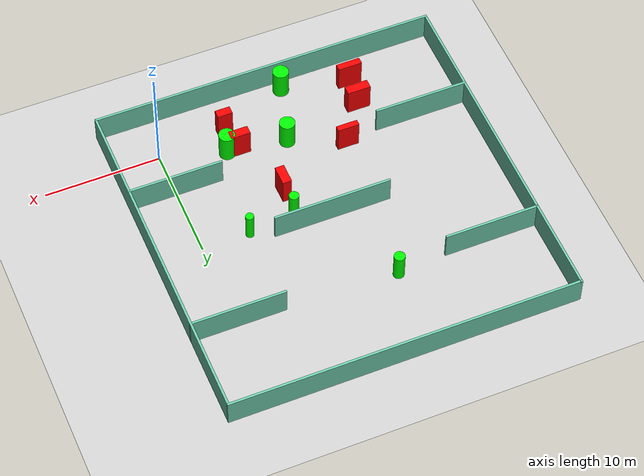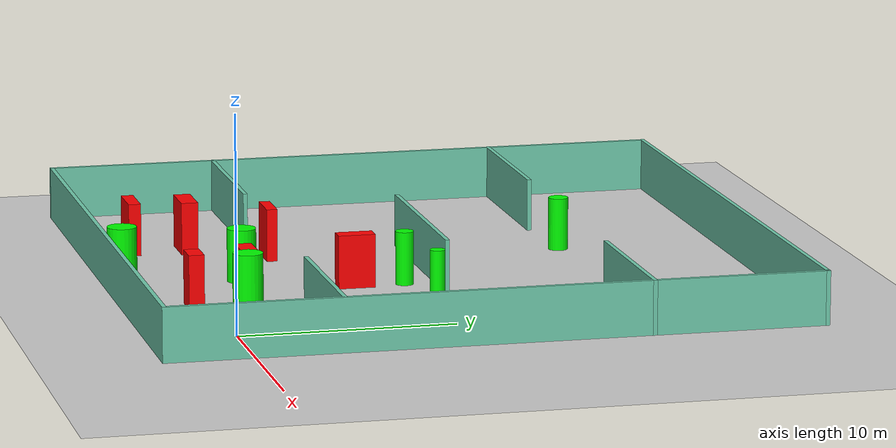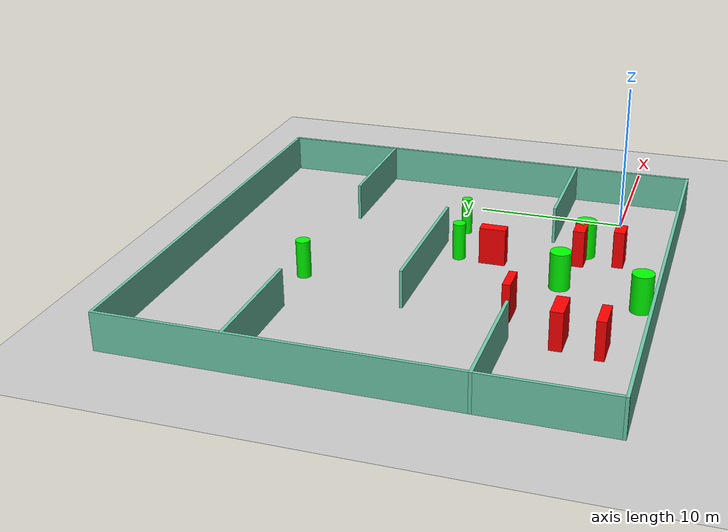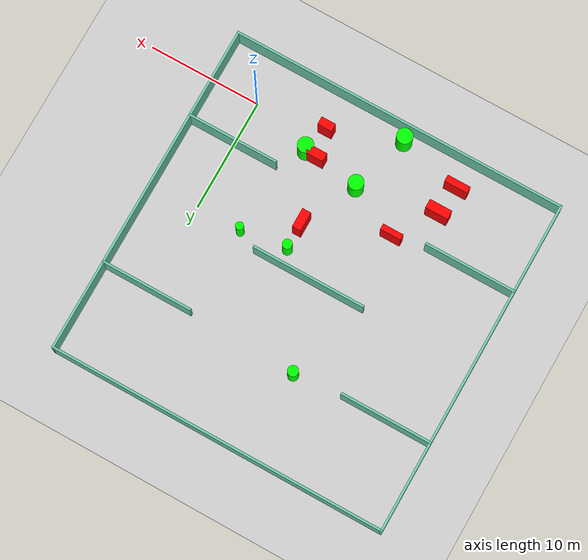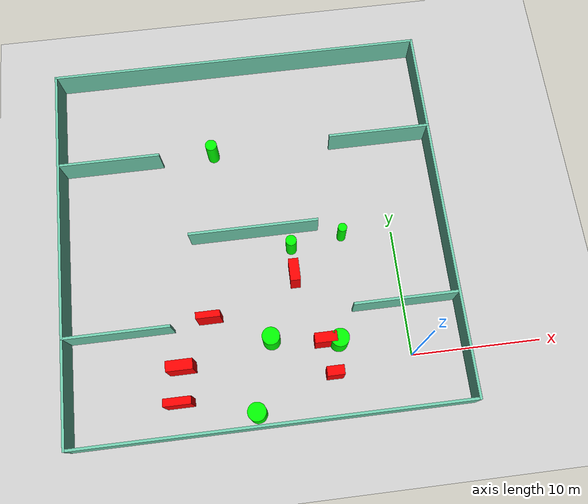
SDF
<sdf version="1.7">
 <world name="default">
  <light name="sun" type="directional">
   <pose>0 0 10 0 -0 0</pose>
   <diffuse>0.8 0.8 0.8 1</diffuse>
   <specular>0.2 0.2 0.2 1</specular>
   <attenuation>
    <range>1000</range>
    <constant>0.9</constant>
    <linear>0.01</linear>
    <quadratic>0.001</quadratic>
   </attenuation>
   <direction>-0.5 0.1 -0.9</direction>
   <spot><inner_angle>0</inner_angle><outer_angle>0</outer_angle><falloff>0</falloff></spot>
  </light>
  <model name="ground_plane">
   <static>1</static>
   <link name="link">
    <collision name="collision">
     <geometry><plane><normal>0 0 1</normal><size>100 100</size></plane></geometry>
     <surface>
      <contact><collide_bitmask>65535</collide_bitmask></contact>
      <friction><ode><mu>100</mu><mu2>50</mu2></ode></friction>
     </surface>
    </collision>
    <visual name="visual">
     <cast_shadows>0</cast_shadows>
     <geometry><plane><normal>0 0 1</normal><size>100 100</size></plane></geometry>
     <material>
      <script><uri>file://media/materials/scripts/gazebo.material</uri><name>Gazebo/Grey</name></script>
     </material>
    </visual>
   </link>
  </model>
  <gravity>0 0 -9.8</gravity>
  <magnetic_field>6e-06 2.3e-05 -4.2e-05</magnetic_field>
  <atmosphere type="adiabatic"/>
  <physics type="ode">
   <max_step_size>0.001</max_step_size>
   <real_time_factor>1</real_time_factor>
   <real_time_update_rate>1000</real_time_update_rate>
  </physics>
  <scene><ambient>0.4 0.4 0.4 1</ambient><background>0.7 0.7 0.7 1</background><shadows>1</shadows></scene>
  <spherical_coordinates>
   <surface_model>EARTH_WGS84</surface_model>
   <latitude_deg>0</latitude_deg>
   <longitude_deg>0</longitude_deg>
   <elevation>0</elevation>
   <heading_deg>0</heading_deg>
  </spherical_coordinates>
  <model name="my_base_walls">
   <link name="Wall_10">
    <collision name="Wall_10_Collision">
     <geometry><box><size>8.2 0.2 2.5</size></box></geometry>
     <pose>0 0 1.25 0 -0 0</pose>
    </collision>
    <visual name="Wall_10_Visual">
     <pose>0 0 1.25 0 -0 0</pose>
     <geometry><box><size>8.2 0.2 2.5</size></box></geometry>
     <material>
      <script><uri>file://media/materials/scripts/gazebo.material</uri><name>Gazebo/Grey</name></script>
      <ambient>0.435294 0.796078 0.67451 1</ambient>
     </material>
     <meta><layer>0</layer></meta>
    </visual>
    <pose>-11 -7 0 0 -0 0</pose>
   </link>
   <link name="Wall_12">
    <collision name="Wall_12_Collision">
     <geometry><box><size>8.2 0.2 2.5</size></box></geometry>
     <pose>0 0 1.25 0 -0 0</pose>
    </collision>
    <visual name="Wall_12_Visual">
     <pose>0 0 1.25 0 -0 0</pose>
     <geometry><box><size>8.2 0.2 2.5</size></box></geometry>
     <material>
      <script><uri>file://media/materials/scripts/gazebo.material</uri><name>Gazebo/Grey</name></script>
      <ambient>0.435294 0.796078 0.67451 1</ambient>
     </material>
     <meta><layer>0</layer></meta>
    </visual>
    <pose>-11 7 0 0 -0 0</pose>
   </link>
   <link name="Wall_14">
    <collision name="Wall_14_Collision">
     <geometry><box><size>8.2 0.2 2.5</size></box></geometry>
     <pose>0 0 1.25 0 -0 0</pose>
    </collision>
    <visual name="Wall_14_Visual">
     <pose>0 0 1.25 0 -0 0</pose>
     <geometry><box><size>8.2 0.2 2.5</size></box></geometry>
     <material>
      <script><uri>file://media/materials/scripts/gazebo.material</uri><name>Gazebo/Grey</name></script>
      <ambient>0.435294 0.796078 0.67451 1</ambient>
     </material>
     <meta><layer>0</layer></meta>
    </visual>
    <pose>11 7 0 0 -0 3.14159</pose>
   </link>
   <link name="Wall_16">
    <collision name="Wall_16_Collision">
     <geometry><box><size>10.2 0.2 2.5</size></box></geometry>
     <pose>0 0 1.25 0 -0 0</pose>
    </collision>
    <visual name="Wall_16_Visual">
     <pose>0 0 1.25 0 -0 0</pose>
     <geometry><box><size>10.2 0.2 2.5</size></box></geometry>
     <material>
      <script><uri>file://media/materials/scripts/gazebo.material</uri><name>Gazebo/Grey</name></script>
      <ambient>0.435294 0.796078 0.67451 1</ambient>
     </material>
     <meta><layer>0</layer></meta>
    </visual>
    <pose>0 0 0 0 -0 3.14159</pose>
   </link>
   <link name="Wall_2">
    <collision name="Wall_2_Collision">
     <geometry><box><size>30.2 0.2 2.5</size></box></geometry>
     <pose>0 0 1.25 0 -0 0</pose>
    </collision>
    <visual name="Wall_2_Visual">
     <pose>0 0 1.25 0 -0 0</pose>
     <geometry><box><size>30.2 0.2 2.5</size></box></geometry>
     <material>
      <script><uri>file://media/materials/scripts/gazebo.material</uri><name>Gazebo/Grey</name></script>
      <ambient>0.435294 0.796078 0.67451 1</ambient>
     </material>
     <meta><layer>0</layer></meta>
    </visual>
    <pose>0 -15 0 0 -0 3.14159</pose>
   </link>
   <link name="Wall_3">
    <collision name="Wall_3_Collision">
     <geometry><box><size>30.2 0.2 2.5</size></box></geometry>
     <pose>0 0 1.25 0 -0 0</pose>
    </collision>
    <visual name="Wall_3_Visual">
     <pose>0 0 1.25 0 -0 0</pose>
     <geometry><box><size>30.2 0.2 2.5</size></box></geometry>
     <material>
      <script><uri>file://media/materials/scripts/gazebo.material</uri><name>Gazebo/Grey</name></script>
      <ambient>0.435294 0.796078 0.67451 1</ambient>
     </material>
     <meta><layer>0</layer></meta>
    </visual>
    <pose>-15 0 0 0 -0 1.5708</pose>
   </link>
   <link name="Wall_4">
    <collision name="Wall_4_Collision">
     <geometry><box><size>30.2 0.2 2.5</size></box></geometry>
     <pose>0 0 1.25 0 -0 0</pose>
    </collision>
    <visual name="Wall_4_Visual">
     <pose>0 0 1.25 0 -0 0</pose>
     <geometry><box><size>30.2 0.2 2.5</size></box></geometry>
     <material>
      <script><uri>file://media/materials/scripts/gazebo.material</uri><name>Gazebo/Grey</name></script>
      <ambient>0.435294 0.796078 0.67451 1</ambient>
     </material>
     <meta><layer>0</layer></meta>
    </visual>
    <pose>0 15 0 0 -0 0</pose>
   </link>
   <link name="Wall_6">
    <collision name="Wall_6_Collision">
     <geometry><box><size>30.2 0.2 2.5</size></box></geometry>
     <pose>0 0 1.25 0 -0 0</pose>
    </collision>
    <visual name="Wall_6_Visual">
     <pose>0 0 1.25 0 -0 0</pose>
     <geometry><box><size>30.2 0.2 2.5</size></box></geometry>
     <material>
      <script><uri>file://media/materials/scripts/gazebo.material</uri><name>Gazebo/Grey</name></script>
      <ambient>0.435294 0.796078 0.67451 1</ambient>
     </material>
     <meta><layer>0</layer></meta>
    </visual>
    <pose>15 0 0 0 -0 1.5708</pose>
   </link>
   <link name="Wall_8">
    <collision name="Wall_8_Collision">
     <geometry><box><size>8.2 0.2 2.5</size></box></geometry>
     <pose>0 0 1.25 0 -0 0</pose>
    </collision>
    <visual name="Wall_8_Visual">
     <pose>0 0 1.25 0 -0 0</pose>
     <geometry><box><size>8.2 0.2 2.5</size></box></geometry>
     <material>
      <script><uri>file://media/materials/scripts/gazebo.material</uri><name>Gazebo/Grey</name></script>
      <ambient>0.435294 0.796078 0.67451 1</ambient>
     </material>
     <meta><layer>0</layer></meta>
    </visual>
    <pose>11 -7 0 0 -0 3.14159</pose>
   </link>
   <static>1</static>
   <pose>-11 11 0 0 -0 0</pose>
  </model>
  <model name="cylinder1">
   <static>1</static>
   <link name="link">
    <inertial>
     <mass>1</mass>
     <inertia><ixx>0.5</ixx><ixy>0</ixy><ixz>0</ixz><iyy>0.5</iyy><iyz>0</iyz><izz>1</izz></inertia>
    </inertial>
    <collision name="collision">
     <geometry><cylinder><radius>0.6752373137253387</radius><length>2.5</length></cylinder></geometry>
    </collision>
    <visual name="visual">
     <geometry><cylinder><radius>0.6752373137253387</radius><length>2.5</length></cylinder></geometry>
     <material>
      <ambient>0 1 0 1</ambient>
      <diffuse>0 1 0 1</diffuse>
      <specular>0.1 0.1 0.1 1</specular>
      <emissive>0 0 0 0</emissive>
     </material>
    </visual>
   </link>
   <pose>-10.566752072631596 2.33329708685039 1.25 0 0 0</pose>
  </model>
  <model name="cylinder2">
   <static>1</static>
   <link name="link">
    <inertial>
     <mass>1</mass>
     <inertia><ixx>0.5</ixx><ixy>0</ixy><ixz>0</ixz><iyy>0.5</iyy><iyz>0</iyz><izz>1</izz></inertia>
    </inertial>
    <collision name="collision">
     <geometry><cylinder><radius>0.42547100587149056</radius><length>2.5</length></cylinder></geometry>
    </collision>
    <visual name="visual">
     <geometry><cylinder><radius>0.42547100587149056</radius><length>2.5</length></cylinder></geometry>
     <material>
      <ambient>0 1 0 1</ambient>
      <diffuse>0 1 0 1</diffuse>
      <specular>0.1 0.1 0.1 1</specular>
      <emissive>0 0 0 0</emissive>
     </material>
    </visual>
   </link>
   <pose>-8.208854367933437 9.523927933002618 1.25 0 0 0</pose>
  </model>
  <model name="cylinder3">
   <static>1</static>
   <link name="link">
    <inertial>
     <mass>1</mass>
     <inertia><ixx>0.5</ixx><ixy>0</ixy><ixz>0</ixz><iyy>0.5</iyy><iyz>0</iyz><izz>1</izz></inertia>
    </inertial>
    <collision name="collision">
     <geometry><cylinder><radius>0.3504816792538224</radius><length>2.5</length></cylinder></geometry>
    </collision>
    <visual name="visual">
     <geometry><cylinder><radius>0.3504816792538224</radius><length>2.5</length></cylinder></geometry>
     <material>
      <ambient>0 1 0 1</ambient>
      <diffuse>0 1 0 1</diffuse>
      <specular>0.1 0.1 0.1 1</specular>
      <emissive>0 0 0 0</emissive>
     </material>
    </visual>
   </link>
   <pose>-4.109183106298538 10.092212749839959 1.25 0 0 0</pose>
  </model>
  <model name="cylinder4">
   <static>1</static>
   <link name="link">
    <inertial>
     <mass>1</mass>
     <inertia><ixx>0.5</ixx><ixy>0</ixy><ixz>0</ixz><iyy>0.5</iyy><iyz>0</iyz><izz>1</izz></inertia>
    </inertial>
    <collision name="collision">
     <geometry><cylinder><radius>0.46787199066104646</radius><length>2.5</length></cylinder></geometry>
    </collision>
    <visual name="visual">
     <geometry><cylinder><radius>0.46787199066104646</radius><length>2.5</length></cylinder></geometry>
     <material>
      <ambient>0 1 0 1</ambient>
      <diffuse>0 1 0 1</diffuse>
      <specular>0.1 0.1 0.1 1</specular>
      <emissive>0 0 0 0</emissive>
     </material>
    </visual>
   </link>
   <pose>-13.688545384175104 18.317441945544196 1.25 0 0 0</pose>
  </model>
  <model name="cylinder5">
   <static>1</static>
   <link name="link">
    <inertial>
     <mass>1</mass>
     <inertia><ixx>0.5</ixx><ixy>0</ixy><ixz>0</ixz><iyy>0.5</iyy><iyz>0</iyz><izz>1</izz></inertia>
    </inertial>
    <collision name="collision">
     <geometry><cylinder><radius>0.695915467786114</radius><length>2.5</length></cylinder></geometry>
    </collision>
    <visual name="visual">
     <geometry><cylinder><radius>0.695915467786114</radius><length>2.5</length></cylinder></geometry>
     <material>
      <ambient>0 1 0 1</ambient>
      <diffuse>0 1 0 1</diffuse>
      <specular>0.1 0.1 0.1 1</specular>
      <emissive>0 0 0 0</emissive>
     </material>
    </visual>
   </link>
   <pose>-5.461104502017889 1.6045044631630248 1.25 0 0 0</pose>
  </model>
  <model name="cylinder6">
   <static>1</static>
   <link name="link">
    <inertial>
     <mass>1</mass>
     <inertia><ixx>0.5</ixx><ixy>0</ixy><ixz>0</ixz><iyy>0.5</iyy><iyz>0</iyz><izz>1</izz></inertia>
    </inertial>
    <collision name="collision">
     <geometry><cylinder><radius>0.6954450653101627</radius><length>2.5</length></cylinder></geometry>
    </collision>
    <visual name="visual">
     <geometry><cylinder><radius>0.6954450653101627</radius><length>2.5</length></cylinder></geometry>
     <material>
      <ambient>0 1 0 1</ambient>
      <diffuse>0 1 0 1</diffuse>
      <specular>0.1 0.1 0.1 1</specular>
      <emissive>0 0 0 0</emissive>
     </material>
    </visual>
   </link>
   <pose>-12.150645480238074 -2.985394101438206 1.25 0 0 0</pose>
  </model>
  <model name="box1">
   <static>1</static>
   <link name="link">
    <inertial>
     <mass>1</mass>
     <inertia><ixx>0.083</ixx><ixy>0</ixy><ixz>0</ixz><iyy>0.083</iyy><iyz>0</iyz><izz>0.083</izz></inertia>
    </inertial>
    <collision name="collision">
     <geometry><box><size>0.787796152497291 1.7316010008381042 2.5</size></box></geometry>
    </collision>
    <visual name="visual">
     <geometry><box><size>0.787796152497291 1.7316010008381042 2.5</size></box></geometry>
     <material>
      <ambient>1 0 0 1</ambient>
      <diffuse>1 0 0 1</diffuse>
      <specular>0.1 0.1 0.1 1</specular>
      <emissive>0 0 0 0</emissive>
     </material>
    </visual>
    <sensor name="my_contact" type="contact">
     <contact><collision>box_collision</collision><topic>__default_topic__</topic></contact>
    </sensor>
   </link>
   <pose>-8.22935416235443 7.199013257382163 1.25 0 0 0</pose>
  </model>
  <model name="box2">
   <static>1</static>
   <link name="link">
    <inertial>
     <mass>1</mass>
     <inertia><ixx>0.083</ixx><ixy>0</ixy><ixz>0</ixz><iyy>0.083</iyy><iyz>0</iyz><izz>0.083</izz></inertia>
    </inertial>
    <collision name="collision">
     <geometry><box><size>1.3062380193500185 0.7176469575395146 2.5</size></box></geometry>
    </collision>
    <visual name="visual">
     <geometry><box><size>1.3062380193500185 0.7176469575395146 2.5</size></box></geometry>
     <material>
      <ambient>1 0 0 1</ambient>
      <diffuse>1 0 0 1</diffuse>
      <specular>0.1 0.1 0.1 1</specular>
      <emissive>0 0 0 0</emissive>
     </material>
    </visual>
    <sensor name="my_contact" type="contact">
     <contact><collision>box_collision</collision><topic>__default_topic__</topic></contact>
    </sensor>
   </link>
   <pose>-6.1139541402557445 -0.7509682533242006 1.25 0 0 0</pose>
  </model>
  <model name="box3">
   <static>1</static>
   <link name="link">
    <inertial>
     <mass>1</mass>
     <inertia><ixx>0.083</ixx><ixy>0</ixy><ixz>0</ixz><iyy>0.083</iyy><iyz>0</iyz><izz>0.083</izz></inertia>
    </inertial>
    <collision name="collision">
     <geometry><box><size>2.0293364018899247 0.7989333330869164 2.5</size></box></geometry>
    </collision>
    <visual name="visual">
     <geometry><box><size>2.0293364018899247 0.7989333330869164 2.5</size></box></geometry>
     <material>
      <ambient>1 0 0 1</ambient>
      <diffuse>1 0 0 1</diffuse>
      <specular>0.1 0.1 0.1 1</specular>
      <emissive>0 0 0 0</emissive>
     </material>
    </visual>
    <sensor name="my_contact" type="contact">
     <contact><collision>box_collision</collision><topic>__default_topic__</topic></contact>
    </sensor>
   </link>
   <pose>-17.485871491088613 1.0279995510964834 1.25 0 0 0</pose>
  </model>
  <model name="box4">
   <static>1</static>
   <link name="link">
    <inertial>
     <mass>1</mass>
     <inertia><ixx>0.083</ixx><ixy>0</ixy><ixz>0</ixz><iyy>0.083</iyy><iyz>0</iyz><izz>0.083</izz></inertia>
    </inertial>
    <collision name="collision">
     <geometry><box><size>1.860177154636145 0.507250089568289 2.5</size></box></geometry>
    </collision>
    <visual name="visual">
     <geometry><box><size>1.860177154636145 0.507250089568289 2.5</size></box></geometry>
     <material>
      <ambient>1 0 0 1</ambient>
      <diffuse>1 0 0 1</diffuse>
      <specular>0.1 0.1 0.1 1</specular>
      <emissive>0 0 0 0</emissive>
     </material>
    </visual>
    <sensor name="my_contact" type="contact">
     <contact><collision>box_collision</collision><topic>__default_topic__</topic></contact>
    </sensor>
   </link>
   <pose>-15.088512184613421 4.523814242073842 1.25 0 0 0</pose>
  </model>
  <model name="box5">
   <static>1</static>
   <link name="link">
    <inertial>
     <mass>1</mass>
     <inertia><ixx>0.083</ixx><ixy>0</ixy><ixz>0</ixz><iyy>0.083</iyy><iyz>0</iyz><izz>0.083</izz></inertia>
    </inertial>
    <collision name="collision">
     <geometry><box><size>1.6944671186639304 0.7672388892199045 2.5</size></box></geometry>
    </collision>
    <visual name="visual">
     <geometry><box><size>1.6944671186639304 0.7672388892199045 2.5</size></box></geometry>
     <material>
      <ambient>1 0 0 1</ambient>
      <diffuse>1 0 0 1</diffuse>
      <specular>0.1 0.1 0.1 1</specular>
      <emissive>0 0 0 0</emissive>
     </material>
    </visual>
    <sensor name="my_contact" type="contact">
     <contact><collision>box_collision</collision><topic>__default_topic__</topic></contact>
    </sensor>
   </link>
   <pose>-6.510747835897945 1.7699291943525344 1.25 0 0 0</pose>
  </model>
  <model name="box6">
   <static>1</static>
   <link name="link">
    <inertial>
     <mass>1</mass>
     <inertia><ixx>0.083</ixx><ixy>0</ixy><ixz>0</ixz><iyy>0.083</iyy><iyz>0</iyz><izz>0.083</izz></inertia>
    </inertial>
    <collision name="collision">
     <geometry><box><size>2.085099143772359 0.5847601443041166 2.5</size></box></geometry>
    </collision>
    <visual name="visual">
     <geometry><box><size>2.085099143772359 0.5847601443041166 2.5</size></box></geometry>
     <material>
      <ambient>1 0 0 1</ambient>
      <diffuse>1 0 0 1</diffuse>
      <specular>0.1 0.1 0.1 1</specular>
      <emissive>0 0 0 0</emissive>
     </material>
    </visual>
    <sensor name="my_contact" type="contact">
     <contact><collision>box_collision</collision><topic>__default_topic__</topic></contact>
    </sensor>
   </link>
   <pose>-17.809649316272377 -1.5544160702034495 1.25 0 0 0</pose>
  </model>
 </world>
</sdf>
